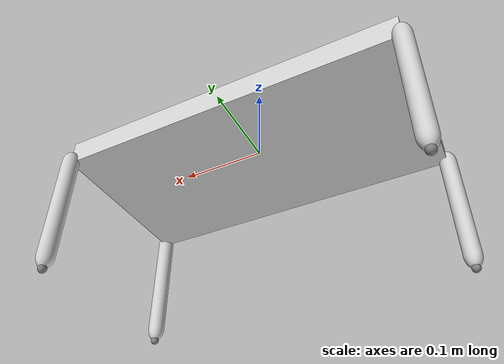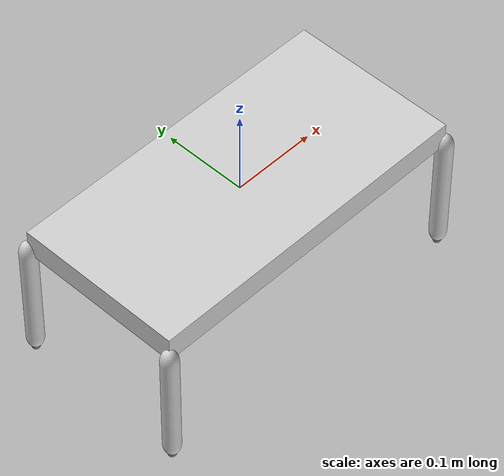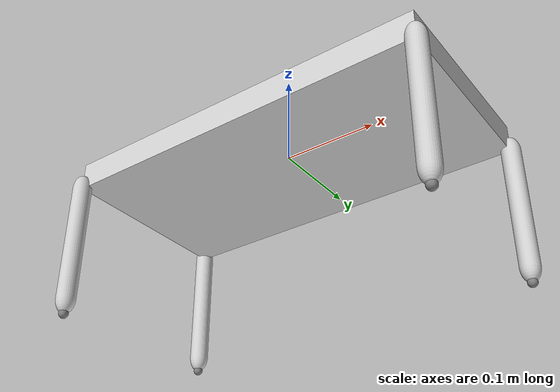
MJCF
<mujoco model="default">
  <compiler angle="radian" autolimits="true" inertiafromgeom="true"/>
  <option timestep="0.002500" gravity="0 0 -9.810000" integrator="implicitfast" solver="Newton" iterations="100" ls_iterations="50" noslip_iterations="4"/>
  <asset>
    <mesh name="torso_mesh" file="meshes/quadruped/torso.stl" scale="0.160000 0.160000 0.100000"/>
    <mesh name="leg_foot_mesh" file="meshes/quadruped/leg_foot.stl" scale="0.100000 0.100000 0.160000"/>
  </asset>
  <default>
    <geom contype="1" conaffinity="1" condim="4" margin="0.002000" solref="0.005 1"/>
    <joint armature="0.01"/>
  </default>
  <visual>
    <headlight diffuse="0.6 0.6 0.6" ambient="0.3 0.3 0.3" specular="0 0 0"/>
  </visual>
  <worldbody>
    <body name="torso" pos="0 0 0">
      <freejoint name="root_free"/>
      <geom name="torso_geom" type="mesh" mesh="torso_mesh" mass="1.200000" friction="0.3500 0.01 0.001" rgba="0.82 0.82 0.82 1"/>
      <body name="front_left_leg" pos="0.200000 0.100000 0.000000">
        <joint name="front_left_hinge" type="hinge" axis="0.000000 1.000000 0.000000" limited="false" damping="8.000000"/>
        <geom name="front_left_leg_foot" type="mesh" mesh="leg_foot_mesh" mass="0.600000" friction="0.9000 0.0012 0.00008" priority="2" rgba="0.82 0.82 0.82 1"/>
        <site name="front_left_foot_site" pos="0 0 -0.160000" size="0.005000"/>
      </body>
      <body name="front_right_leg" pos="0.200000 -0.100000 0.000000">
        <joint name="front_right_hinge" type="hinge" axis="0.000000 1.000000 0.000000" limited="false" damping="8.000000"/>
        <geom name="front_right_leg_foot" type="mesh" mesh="leg_foot_mesh" mass="0.600000" friction="0.9000 0.0012 0.00008" priority="2" rgba="0.82 0.82 0.82 1"/>
        <site name="front_right_foot_site" pos="0 0 -0.160000" size="0.005000"/>
      </body>
      <body name="rear_left_leg" pos="-0.200000 0.100000 0.000000">
        <joint name="rear_left_hinge" type="hinge" axis="0.000000 1.000000 0.000000" limited="false" damping="8.000000"/>
        <geom name="rear_left_leg_foot" type="mesh" mesh="leg_foot_mesh" mass="0.600000" friction="0.9000 0.0012 0.00008" priority="2" rgba="0.82 0.82 0.82 1"/>
        <site name="rear_left_foot_site" pos="0 0 -0.160000" size="0.005000"/>
      </body>
      <body name="rear_right_leg" pos="-0.200000 -0.100000 0.000000">
        <joint name="rear_right_hinge" type="hinge" axis="0.000000 1.000000 0.000000" limited="false" damping="8.000000"/>
        <geom name="rear_right_leg_foot" type="mesh" mesh="leg_foot_mesh" mass="0.600000" friction="0.9000 0.0012 0.00008" priority="2" rgba="0.82 0.82 0.82 1"/>
        <site name="rear_right_foot_site" pos="0 0 -0.160000" size="0.005000"/>
      </body>
    </body>
  </worldbody>
  <actuator>
    <motor name="front_left_motor" joint="front_left_hinge" gear="1" ctrllimited="true" ctrlrange="-12.000000 12.000000"/>
    <motor name="front_right_motor" joint="front_right_hinge" gear="1" ctrllimited="true" ctrlrange="-12.000000 12.000000"/>
    <motor name="rear_left_motor" joint="rear_left_hinge" gear="1" ctrllimited="true" ctrlrange="-12.000000 12.000000"/>
    <motor name="rear_right_motor" joint="rear_right_hinge" gear="1" ctrllimited="true" ctrlrange="-12.000000 12.000000"/>
  </actuator>
</mujoco>
